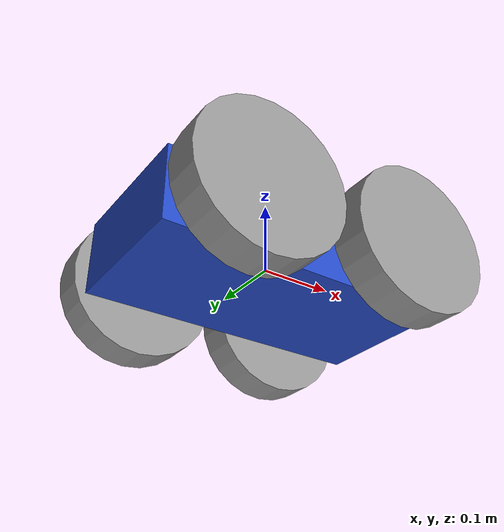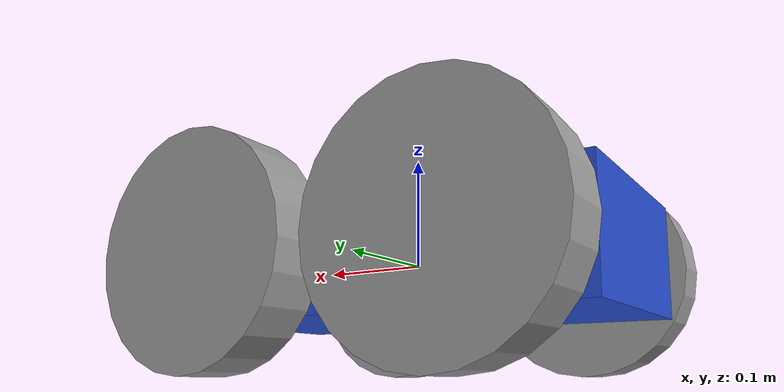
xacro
<?xml version='1.0'?>

<robot name="transportation" xmlns:xacro="http://www.ros.org/wiki/xacro">

  <xacro:include filename="$(find lunabotics2020)/models/transportation.gazebo" />
  <xacro:include filename="$(find lunabotics2020)/models/materials.xacro" />
  <xacro:include filename="$(find lunabotics2020)/models/macros.xacro" />

  <link name='chassis'>
    <pose>0 0 0.1 0 0 0</pose>

    <inertial>
      <mass value="10.0"/>
      <origin xyz="0.0 0 0.1" rpy=" 0 0 0"/>
      <inertia
          ixx="0.5" ixy="0" ixz="0"
          iyy="1.0" iyz="0"
          izz="0.1"
      />
    </inertial>
    <collision name='collision'>
      <geometry>
        <box size=".4 .2 .1"/>
      </geometry>
    </collision>
    <visual name='chassis_visual'>
      <origin xyz="0 0 0" rpy=" 0 0 0"/>
      <geometry>
        <box size=".4 .2 .1"/>
      </geometry>
    </visual>
  </link>

  <link name='front'>
    <collision name='collision'>
      <origin xyz="0 0 0" rpy="0 0 0"/>
      <geometry>
        <box size='.1 .1 0.02'/>
      </geometry>
    </collision>
    <visual name='front_visual'>
      <origin xyz="0 0 0" rpy="0 0 0"/>
      <geometry>
        <box size="0.1 0.1 0.02"/>
      </geometry>
    </visual>
    <inertial>
      <mass value="10.0"/>
      <origin xyz="0.0 0 0" rpy=" 0 0 0"/>
      <inertia
          ixx="0.5" ixy="0" ixz="0"
          iyy="1.0" iyz="0"
          izz="0.1"
      />
    </inertial>
  </link>

  <link name="left_wheel">
    <!--origin xyz="0.1 0.13 0.1" rpy="0 1.5707 1.5707"/-->
    <collision name="collision">
      <origin xyz="0 0 0" rpy="0 1.5707 1.5707"/>
      <geometry>
        <cylinder radius="0.1" length="0.05"/>
      </geometry>
    </collision>
    <visual name="left_wheel_visual">
      <origin xyz="0 0 0" rpy="0 1.5707 1.5707"/>
      <geometry>
        <cylinder radius="0.1" length="0.05"/>
      </geometry>
    </visual>
    <inertial>
      <origin xyz="0 0 0" rpy="0 1.5707 1.5707"/>
      <mass value="5"/>
      <cylinder_inertia m="5" r="0.1" h="0.05"/>
      <inertia
        ixx="1.0" ixy="0.0" ixz="0.0"
        iyy="1.0" iyz="0.0"
        izz="1.0"/>
    </inertial>
  </link>

    <link name="left_rear_wheel">
    <!--origin xyz="0.1 0.13 0.1" rpy="0 1.5707 1.5707"/-->
    <collision name="collision">
      <origin xyz="0 0 0" rpy="0 1.5707 1.5707"/>
      <geometry>
        <cylinder radius="0.1" length="0.05"/>
      </geometry>
    </collision>
    <visual name="left_rear_wheel_visual">
      <origin xyz="0 0 0" rpy="0 1.5707 1.5707"/>
      <geometry>
        <cylinder radius="0.1" length="0.05"/>
      </geometry>
    </visual>
    <inertial>
      <origin xyz="0 0 0" rpy="0 1.5707 1.5707"/>
      <mass value="5"/>
      <cylinder_inertia m="5" r="0.1" h="0.05"/>
      <inertia
        ixx="1.0" ixy="0.0" ixz="0.0"
        iyy="1.0" iyz="0.0"
        izz="1.0"/>
    </inertial>
  </link>

  <link name="right_wheel">
    <!--origin xyz="0.1 -0.13 0.1" rpy="0 1.5707 1.5707"/-->
    <collision name="collision">
      <origin xyz="0 0 0" rpy="0 1.5707 1.5707"/>
      <geometry>
        <cylinder radius="0.1" length="0.05"/>
      </geometry>
    </collision>
    <visual name="right_wheel_visual">
      <origin xyz="0 0 0" rpy="0 1.5707 1.5707"/>
      <geometry>
        <cylinder radius="0.1" length="0.05"/>
      </geometry>
    </visual>
    <inertial>
      <origin xyz="0 0 0" rpy="0 1.5707 1.5707"/>
      <mass value="5"/>
      <cylinder_inertia m="5" r="0.1" h="0.05"/>
      <inertia
        ixx="1.0" ixy="0.0" ixz="0.0"
        iyy="1.0" iyz="0.0"
        izz="1.0"/>
    </inertial>
  </link>

    <link name="right_rear_wheel">
    <!--origin xyz="0.1 -0.13 0.1" rpy="0 1.5707 1.5707"/-->
    <collision name="collision">
      <origin xyz="0 0 0" rpy="0 1.5707 1.5707"/>
      <geometry>
        <cylinder radius="0.1" length="0.05"/>
      </geometry>
    </collision>
    <visual name="right_rear_wheel_visual">
      <origin xyz="0 0 0" rpy="0 1.5707 1.5707"/>
      <geometry>
        <cylinder radius="0.1" length="0.05"/>
      </geometry>
    </visual>
    <inertial>
      <origin xyz="0 0 0" rpy="0 1.5707 1.5707"/>
      <mass value="5"/>
      <cylinder_inertia m="5" r="0.1" h="0.05"/>
      <inertia
        ixx="1.0" ixy="0.0" ixz="0.0"
        iyy="1.0" iyz="0.0"
        izz="1.0"/>
    </inertial>
  </link>

  <joint type="continuous" name="left_wheel_hinge">
    <origin xyz="0.11 0.15 0" rpy="0 0 0"/>
    <child link="left_wheel"/>
    <parent link="chassis"/>
    <axis xyz="0 1 0" rpy="0 0 0"/>
    <limit effort="100" velocity="100"/>
    <joint_properties damping="0.0" friction="0.0"/>
  </joint>

  <joint type="continuous" name="left_rear_wheel_hinge">
    <origin xyz="-0.11 0.15 0" rpy="0 0 0"/>
    <child link="left_rear_wheel"/>
    <parent link="chassis"/>
    <axis xyz="0 1 0" rpy="0 0 0"/>
    <limit effort="100" velocity="100"/>
    <joint_properties damping="0.0" friction="0.0"/>
  </joint>

  <joint type="continuous" name="right_wheel_hinge">
    <origin xyz="0.11 -0.15 0" rpy="0 0 0"/>
    <child link="right_wheel"/>
    <parent link="chassis"/>
    <axis xyz="0 1 0" rpy="0 0 0"/>
    <limit effort="100" velocity="100"/>
    <joint_properties damping="0.0" friction="0.0"/>
  </joint>

  <joint type="continuous" name="right_rear_wheel_hinge">
    <origin xyz="-0.11 -0.15 0" rpy="0 0 0"/>
    <child link="right_rear_wheel"/>
    <parent link="chassis"/>
    <axis xyz="0 1 0" rpy="0 0 0"/>
    <limit effort="100" velocity="100"/>
    <joint_properties damping="0.0" friction="0.0"/>
  </joint>

  <joint type="fixed" name="front_fixed">
    <origin xyz="0.1 0 0.05" rpy="0 0 0"/>
    <child link="front"/>
    <parent link="chassis"/>
  </joint>

</robot>
